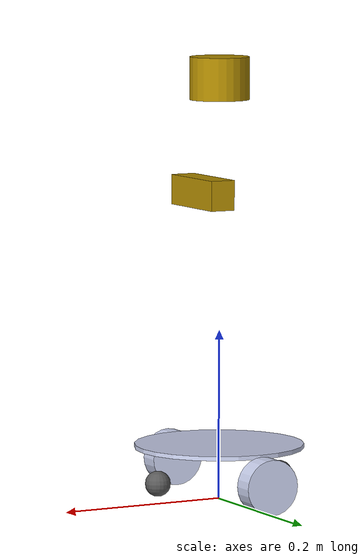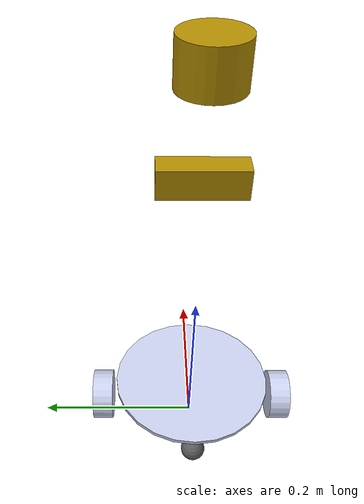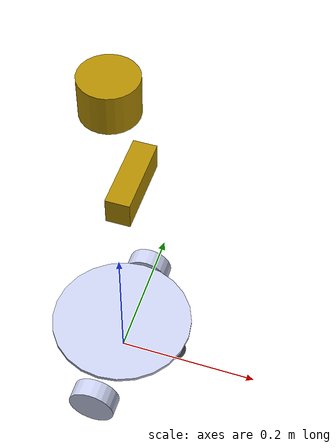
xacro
<?xml version="1.0"?>

<robot name="Final_Assembly2" xmlns:xacro="http://ros.org/wiki/xacro">
  <xacro:property name="ofset_z" value = "0.032"/>

  <!-- ######################### base_footprint ######################### -->
  <link name="base_footprint">
  </link>

  <!-- ######################### base_link ######################### -->
  <link name="base_link">
    <inertial>
      <origin
        xyz="0.00119425624201991 9.90028783521845E-06 0.126920808175509"
        rpy="0 0 0" />
      <mass
        value="0.560450964958611" />
      <inertia
        ixx="0.00105600778155876"
        ixy="-6.190638119024E-08"
        ixz="8.73846346168811E-06"
        iyy="0.000862320766772729"
        iyz="-6.26543063625838E-07"
        izz="0.000674518878809491" />
    </inertial>

    <visual>
      <origin xyz="0 0 ${ofset_z}" rpy="0 0 0" />

      <geometry>
        <cylinder radius="0.1" length="0.005"/>
      </geometry>

      <material name="">
        <color rgba="0.792156862745098 0.819607843137255 0.933333333333333 1" />
      </material>
    </visual>
  </link>

  <joint name="base_link_joint" type="fixed">
    <parent link="base_footprint"/>
    <child link="base_link"/>
    <origin
      xyz="0 0 ${ofset_z}"
      rpy="0 0 0"/>
  </joint>

  <!-- ######################### right_wheel ######################### -->
  <link name="right_wheel">
    <inertial>
      <origin
        xyz="1.24935486049348E-10 -0.00121008827603855 -8.45574168843732E-10"
        rpy="0 0 0" />
      <mass
        value="0.035174499073282" />
      <inertia
        ixx="1.52365647079397E-05"
        ixy="3.85214772125326E-14"
        ixz="-4.05853136736071E-11"
        iyy="2.57857402471617E-05"
        iyz="-3.87897448468681E-13"
        izz="1.52375555448767E-05" />
    </inertial>

    <visual>
      <origin xyz="0 0 0" rpy="1.5708 0 0" />

      <geometry>
        <cylinder radius="0.0325" length="0.026"/>
      </geometry>

      <material name="">
        <color rgba="0.792156862745098 0.819607843137255 0.933333333333333 1" />
      </material>
    </visual>
  </link>

  <joint name="right_joint" type="continuous">
    <origin
      xyz="0 -0.118455251014682 ${ofset_z -0.0311999999999991}"
      rpy="0 0 0" />
    <parent link="base_link" />
    <child link="right_wheel" />
    <axis xyz="0 1 0" />
  </joint>

  <!-- ######################### left_wheel ######################### -->
  <link name="left_wheel">
    <inertial>
      <origin
        xyz="-1.24932742139529E-10 0.00121008827603861 -8.45574106393687E-10"
        rpy="0 0 0" />
      <mass
        value="0.035174499073282" />
      <inertia
        ixx="1.52365647079397E-05"
        ixy="3.85214773307735E-14"
        ixz="4.05853136736088E-11"
        iyy="2.57857402471617E-05"
        iyz="3.87897448292234E-13"
        izz="1.52375555448767E-05" />
    </inertial>

    <visual>
      <origin xyz="0 0 0" rpy="1.5708 0 0" />

      <geometry>
        <cylinder radius="0.0325" length="0.026"/>
      </geometry>

      <material name="">
        <color rgba="0.792156862745098 0.819607843137255 0.933333333333333 1" />
      </material>
    </visual>
  </link>

  <joint name="left_joint" type="continuous">
    <origin
      xyz="0 0.118455251014682 ${ofset_z -0.0311999999999989}"
      rpy="0 0 0" />
    <parent link="base_link" />
    <child link="left_wheel" />
    <axis xyz="0 -1 0" />
  </joint>

  <!-- ######################### front_caster ######################### -->
  <link name="front_caster">
    <inertial>
      <origin
        xyz="0.0119342492391004 -0.000364594873160433 -0.0120670467949858"
        rpy="0 0 0" />
      <mass
        value="0.00560471940158242" />
      <inertia
        ixx="4.69262301118342E-07"
        ixy="1.12491553537142E-08"
        ixz="9.18879942417866E-08"
        iyy="5.96229046503367E-07"
        iyz="-1.3547265919479E-08"
        izz="5.00134110758663E-07" />
    </inertial>

    <visual>
      <origin xyz="0 0 0" rpy="0 0 0" />

      <geometry>
        <sphere radius="0.015"/>
      </geometry>

      <material name="">
        <color rgba="0.352941176470588 0.352941176470588 0.352941176470588 1" />
      </material>
    </visual>
  </link>

  <joint name="front_joint" type="fixed">
    <origin
      xyz="0.0812188938412163 0.000322234423224879 ${ofset_z -0.0395}"
      rpy="0 0 0" />
    <parent link="base_link" />
    <child link="front_caster" />
    <axis xyz="0 0 0" />
  </joint>

  <!-- ######################### back_caster ######################### -->
  <link name="back_caster">
    <inertial>
      <origin
        xyz="0.0119383156811677 -0.000189370491167673 -0.012067046930885"
        rpy="0 0 0" />
      <mass
        value="0.00560471919698078" />
      <inertia
        ixx="4.68959414965462E-07"
        ixy="9.38079468789928E-09"
        ixz="9.20769376585221E-08"
        iyy="5.96531891349892E-07"
        iyz="-1.2196985578877E-08"
        izz="5.00134085801116E-07" />
    </inertial>

    <visual>
      <origin xyz="0 0 0" rpy="0 0 0" />

      <geometry>
        <sphere radius="0.015"/>
      </geometry>

      <material name="">
        <color rgba="0.352941176470588 0.352941176470588 0.352941176470588 1" />
      </material>
    </visual>
  </link>

  <joint name="back_joint" type="fixed">
    <origin
      xyz="-0.081000000000001 0 ${ofset_z -0.0395}"
      rpy="0 0 0" />
    <parent link="base_link" />
    <child link="back_caster" />
    <axis xyz="0 0 0" />
  </joint>

  <!-- ######################### lidar_link ######################### -->
  <link name="lidar_link">
    <inertial>
      <origin
        xyz="-0.00112908293604255 0.000128963727313976 -0.0385815004184485"
        rpy="0 0 0" />
      <mass
        value="0.173803670651051" />
      <inertia
        ixx="0.000129758118904503"
        ixy="2.43871082141114E-07"
        ixz="4.69836973987065E-06"
        iyy="0.000130408373448519"
        iyz="5.30533522719505E-07"
        izz="7.30689593875648E-05" />
    </inertial>

    <visual>
      <origin xyz="0 0 0" rpy="0 0 0" />

      <geometry>
        <cylinder radius="0.035" length="0.05"/>
      </geometry>

      <material name="">
        <color rgba="0.701960784313725 0.552941176470588 0.00392156862745098 1" />
      </material>
    </visual>
  </link>

  <joint name="lidar_joint" type="fixed">
    <origin
      xyz="-0.000120545623894024 0 ${ofset_z + 0.432423653999763}"
      rpy="0 0 0" />
    <parent link="base_link" />
    <child link="lidar_link" />
    <axis xyz="0 0 0" />
  </joint>

  <!-- ######################### camera_link ######################### -->
  <link name="camera_link">
    <visual>
      <origin xyz="0 0 0" rpy="0 0 0" />

      <geometry>
        <box size="0.030 0.10 0.035"/>
      </geometry>

      <material name="">
        <color rgba="0.701960784313725 0.552941176470588 0.00392156862745098 1" />
      </material>
    </visual>
  </link>

  <joint name="camera_joint" type="fixed">
    <origin
      xyz="0.022 0 ${ofset_z + 0.30}"
      rpy="0 0 0" />
    <parent link="base_link" />
    <child link="camera_link" />
    <axis xyz="0 0 0" />
  </joint>

  <!-- Odomertry -->
  <gazebo>
    <plugin name='diff_drive' filename='libgazebo_ros_diff_drive.so'>
      <!--wheel-->
      <left_joint>left_joint</left_joint>
      <right_joint>right_joint</right_joint>

      <!-- kinematics -->
      <wheel_separation>0.25</wheel_separation>
      <wheel_diameter>0.065</wheel_diameter>

      <!-- limits -->
      <max_wheel_torque>80</max_wheel_torque>
      <max_wheel_acceleration>1.0</max_wheel_acceleration>

      <!-- output -->
      <publish_odom>true</publish_odom>
      <publish_odom_tf>true</publish_odom_tf>
      <publish_wheel_tf>true</publish_wheel_tf>

      <command_topic>cmd_vel</command_topic>
      <odometry_topic>odom</odometry_topic>

      <odometry_frame>odom</odometry_frame>
      <robot_base_frame>base_footprint</robot_base_frame>
    </plugin>
  </gazebo>

</robot>
